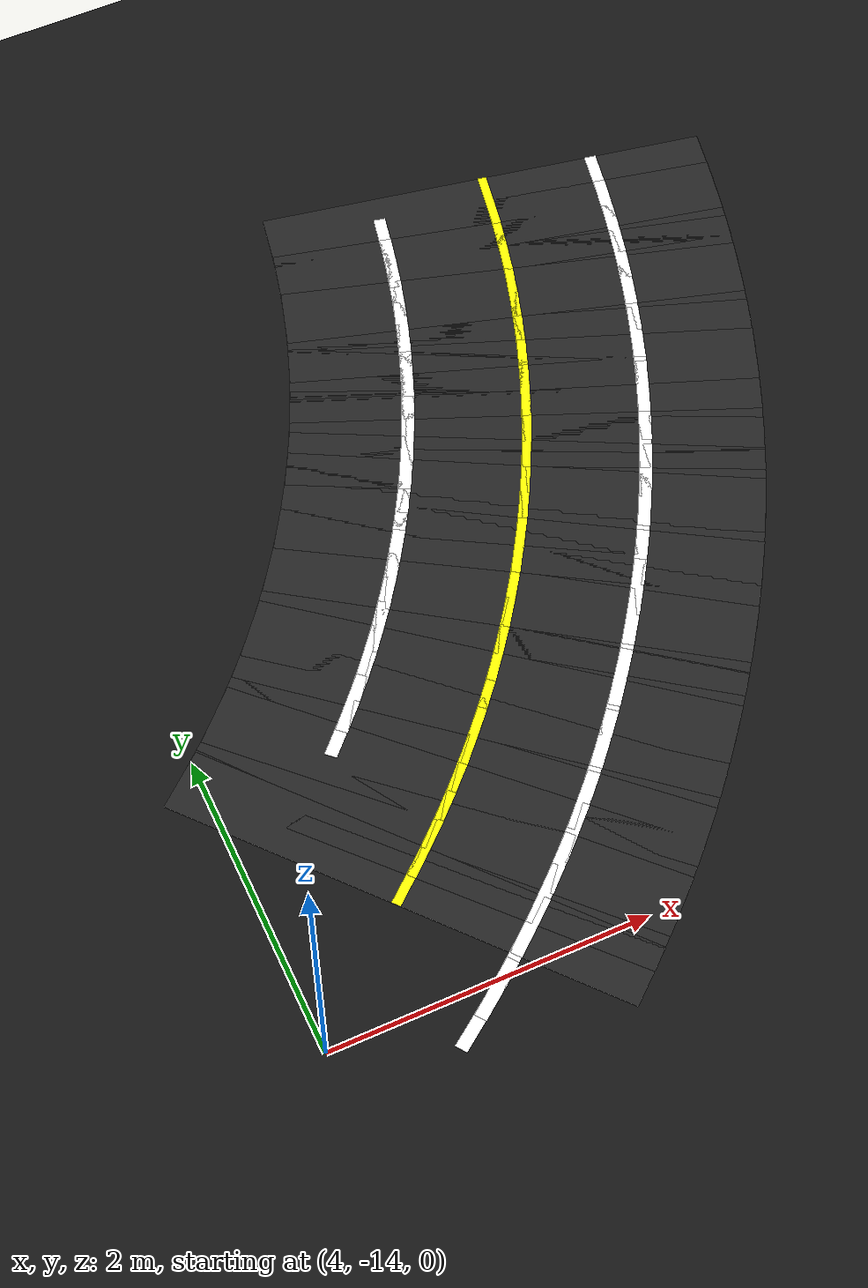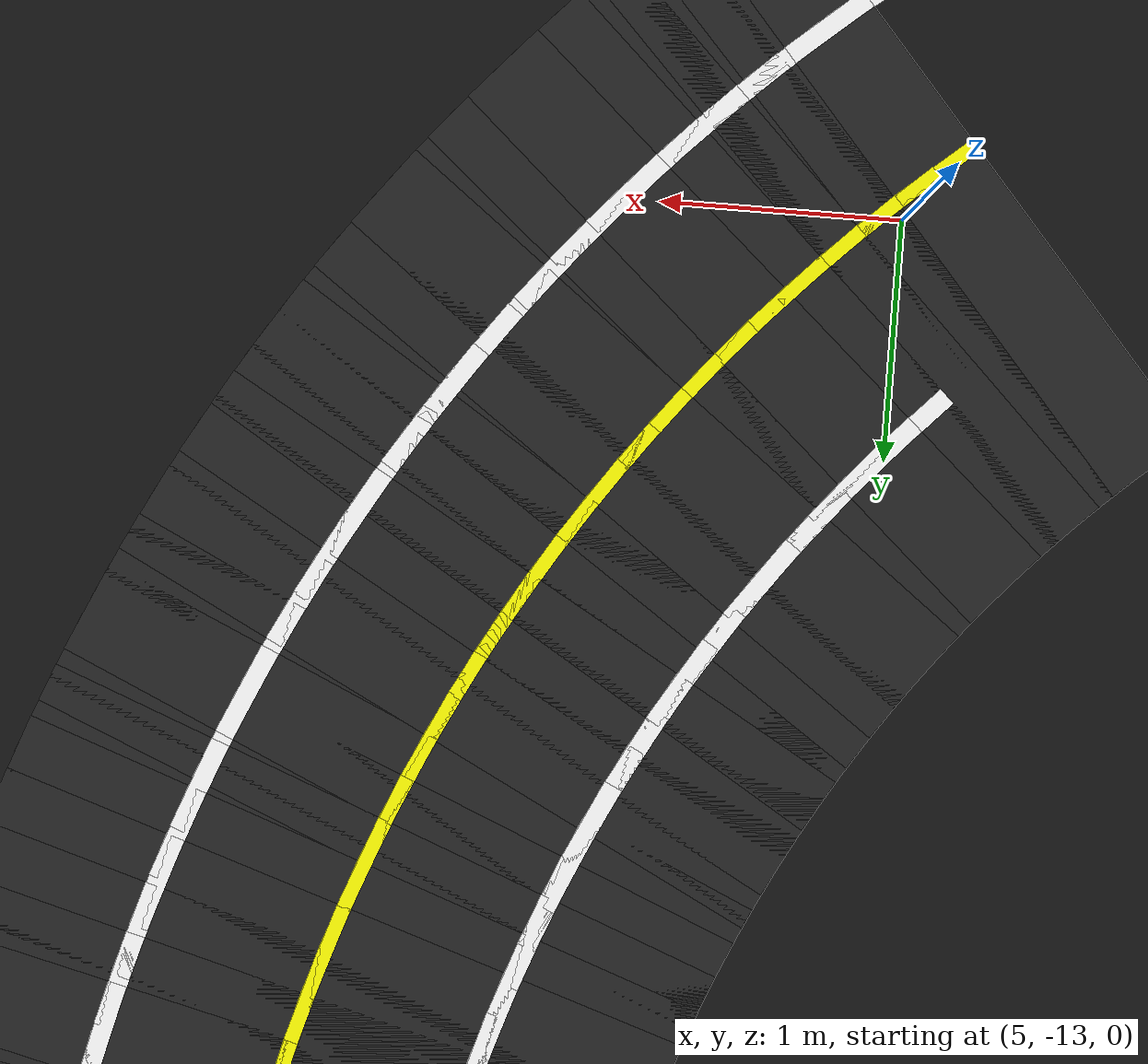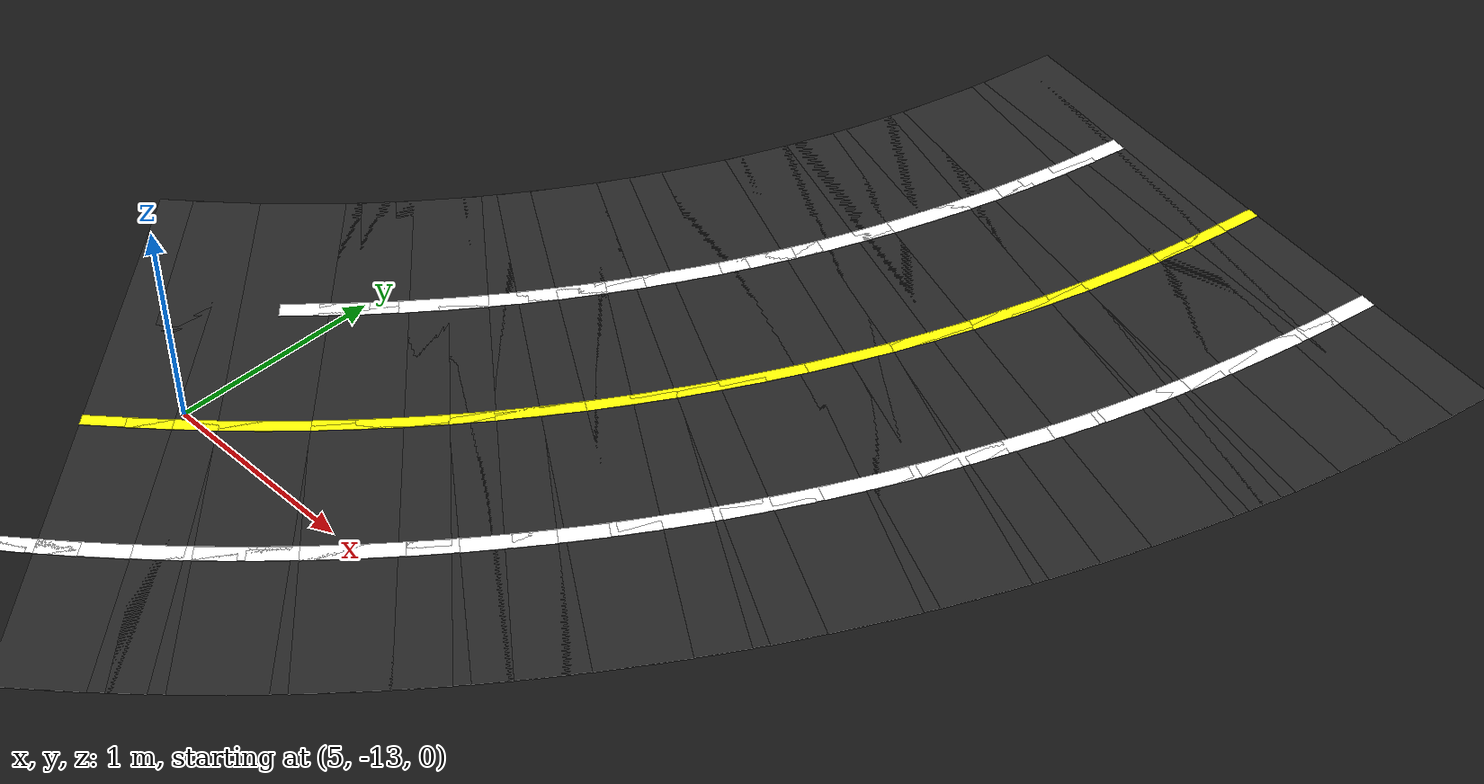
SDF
<sdf version="1.6">
 <world name="figure8_world">
  <model name="ground_plane">
   <static>true</static>
   <link name="link">
    <collision name="collision">
     <geometry><plane><normal>0 0 1</normal><size>120 120</size></plane></geometry>
    </collision>
    <visual name="visual">
     <geometry><plane><normal>0 0 1</normal><size>120 120</size></plane></geometry>
     <material><ambient>0.08 0.08 0.08 1</ambient><diffuse>0.08 0.08 0.08 1</diffuse></material>
    </visual>
   </link>
  </model>
  <model name="seg_00784">
   <static>true</static>
   <pose>7.3744 -8.8668 0.0010 0 0 -1.7541</pose>
   <link name="link">
    <collision name="collision"><geometry><box><size>0.4000 3.0000 0.002</size></box></geometry></collision>
    <visual name="visual">
     <geometry><box><size>0.4000 3.0000 0.002</size></box></geometry>
     <material><ambient>0.14 0.14 0.14 1</ambient><diffuse>0.14 0.14 0.14 1</diffuse></material>
    </visual>
   </link>
  </model>
  <model name="seg_00785">
   <static>true</static>
   <pose>8.1119 -9.0034 0.0030 0 0 -1.7541</pose>
   <link name="link">
    <collision name="collision"><geometry><box><size>0.4000 0.0800 0.002</size></box></geometry></collision>
    <visual name="visual">
     <geometry><box><size>0.4000 0.0800 0.002</size></box></geometry>
     <material><ambient>1 1 1 1</ambient><diffuse>1 1 1 1</diffuse></material>
    </visual>
   </link>
  </model>
  <model name="seg_00787">
   <static>true</static>
   <pose>7.3744 -8.8668 0.0030 0 0 -1.7541</pose>
   <link name="link">
    <collision name="collision"><geometry><box><size>0.4000 0.0600 0.002</size></box></geometry></collision>
    <visual name="visual">
     <geometry><box><size>0.4000 0.0600 0.002</size></box></geometry>
     <material><ambient>1 1 0 1</ambient><diffuse>1 1 0 1</diffuse></material>
    </visual>
   </link>
  </model>
  <model name="seg_00788">
   <static>true</static>
   <pose>7.3361 -9.0593 0.0010 0 0 -1.7802</pose>
   <link name="link">
    <collision name="collision"><geometry><box><size>0.4000 3.0000 0.002</size></box></geometry></collision>
    <visual name="visual">
     <geometry><box><size>0.4000 3.0000 0.002</size></box></geometry>
     <material><ambient>0.14 0.14 0.14 1</ambient><diffuse>0.14 0.14 0.14 1</diffuse></material>
    </visual>
   </link>
  </model>
  <model name="seg_00789">
   <static>true</static>
   <pose>8.0697 -9.2153 0.0030 0 0 -1.7802</pose>
   <link name="link">
    <collision name="collision"><geometry><box><size>0.4000 0.0800 0.002</size></box></geometry></collision>
    <visual name="visual">
     <geometry><box><size>0.4000 0.0800 0.002</size></box></geometry>
     <material><ambient>1 1 1 1</ambient><diffuse>1 1 1 1</diffuse></material>
    </visual>
   </link>
  </model>
  <model name="seg_00790">
   <static>true</static>
   <pose>6.6025 -8.9034 0.0030 0 0 -1.7802</pose>
   <link name="link">
    <collision name="collision"><geometry><box><size>0.4000 0.0800 0.002</size></box></geometry></collision>
    <visual name="visual">
     <geometry><box><size>0.4000 0.0800 0.002</size></box></geometry>
     <material><ambient>1 1 1 1</ambient><diffuse>1 1 1 1</diffuse></material>
    </visual>
   </link>
  </model>
  <model name="seg_00791">
   <static>true</static>
   <pose>7.3361 -9.0593 0.0030 0 0 -1.7802</pose>
   <link name="link">
    <collision name="collision"><geometry><box><size>0.4000 0.0600 0.002</size></box></geometry></collision>
    <visual name="visual">
     <geometry><box><size>0.4000 0.0600 0.002</size></box></geometry>
     <material><ambient>1 1 0 1</ambient><diffuse>1 1 0 1</diffuse></material>
    </visual>
   </link>
  </model>
  <model name="seg_00792">
   <static>true</static>
   <pose>7.2928 -9.2508 0.0010 0 0 -1.8064</pose>
   <link name="link">
    <collision name="collision"><geometry><box><size>0.4000 3.0000 0.002</size></box></geometry></collision>
    <visual name="visual">
     <geometry><box><size>0.4000 3.0000 0.002</size></box></geometry>
     <material><ambient>0.14 0.14 0.14 1</ambient><diffuse>0.14 0.14 0.14 1</diffuse></material>
    </visual>
   </link>
  </model>
  <model name="seg_00793">
   <static>true</static>
   <pose>8.0221 -9.4259 0.0030 0 0 -1.8064</pose>
   <link name="link">
    <collision name="collision"><geometry><box><size>0.4000 0.0800 0.002</size></box></geometry></collision>
    <visual name="visual">
     <geometry><box><size>0.4000 0.0800 0.002</size></box></geometry>
     <material><ambient>1 1 1 1</ambient><diffuse>1 1 1 1</diffuse></material>
    </visual>
   </link>
  </model>
  <model name="seg_00794">
   <static>true</static>
   <pose>6.5635 -9.0758 0.0030 0 0 -1.8064</pose>
   <link name="link">
    <collision name="collision"><geometry><box><size>0.4000 0.0800 0.002</size></box></geometry></collision>
    <visual name="visual">
     <geometry><box><size>0.4000 0.0800 0.002</size></box></geometry>
     <material><ambient>1 1 1 1</ambient><diffuse>1 1 1 1</diffuse></material>
    </visual>
   </link>
  </model>
  <model name="seg_00795">
   <static>true</static>
   <pose>7.2928 -9.2508 0.0030 0 0 -1.8064</pose>
   <link name="link">
    <collision name="collision"><geometry><box><size>0.4000 0.0600 0.002</size></box></geometry></collision>
    <visual name="visual">
     <geometry><box><size>0.4000 0.0600 0.002</size></box></geometry>
     <material><ambient>1 1 0 1</ambient><diffuse>1 1 0 1</diffuse></material>
    </visual>
   </link>
  </model>
  <model name="seg_00796">
   <static>true</static>
   <pose>7.2444 -9.4411 0.0010 0 0 -1.8326</pose>
   <link name="link">
    <collision name="collision"><geometry><box><size>0.4000 3.0000 0.002</size></box></geometry></collision>
    <visual name="visual">
     <geometry><box><size>0.4000 3.0000 0.002</size></box></geometry>
     <material><ambient>0.14 0.14 0.14 1</ambient><diffuse>0.14 0.14 0.14 1</diffuse></material>
    </visual>
   </link>
  </model>
  <model name="seg_00797">
   <static>true</static>
   <pose>7.9689 -9.6353 0.0030 0 0 -1.8326</pose>
   <link name="link">
    <collision name="collision"><geometry><box><size>0.4000 0.0800 0.002</size></box></geometry></collision>
    <visual name="visual">
     <geometry><box><size>0.4000 0.0800 0.002</size></box></geometry>
     <material><ambient>1 1 1 1</ambient><diffuse>1 1 1 1</diffuse></material>
    </visual>
   </link>
  </model>
  <model name="seg_00798">
   <static>true</static>
   <pose>6.5200 -9.2470 0.0030 0 0 -1.8326</pose>
   <link name="link">
    <collision name="collision"><geometry><box><size>0.4000 0.0800 0.002</size></box></geometry></collision>
    <visual name="visual">
     <geometry><box><size>0.4000 0.0800 0.002</size></box></geometry>
     <material><ambient>1 1 1 1</ambient><diffuse>1 1 1 1</diffuse></material>
    </visual>
   </link>
  </model>
  <model name="seg_00799">
   <static>true</static>
   <pose>7.2444 -9.4411 0.0030 0 0 -1.8326</pose>
   <link name="link">
    <collision name="collision"><geometry><box><size>0.4000 0.0600 0.002</size></box></geometry></collision>
    <visual name="visual">
     <geometry><box><size>0.4000 0.0600 0.002</size></box></geometry>
     <material><ambient>1 1 0 1</ambient><diffuse>1 1 0 1</diffuse></material>
    </visual>
   </link>
  </model>
  <model name="seg_00800">
   <static>true</static>
   <pose>7.1911 -9.6301 0.0010 0 0 -1.8588</pose>
   <link name="link">
    <collision name="collision"><geometry><box><size>0.4000 3.0000 0.002</size></box></geometry></collision>
    <visual name="visual">
     <geometry><box><size>0.4000 3.0000 0.002</size></box></geometry>
     <material><ambient>0.14 0.14 0.14 1</ambient><diffuse>0.14 0.14 0.14 1</diffuse></material>
    </visual>
   </link>
  </model>
  <model name="seg_00801">
   <static>true</static>
   <pose>7.9103 -9.8431 0.0030 0 0 -1.8588</pose>
   <link name="link">
    <collision name="collision"><geometry><box><size>0.4000 0.0800 0.002</size></box></geometry></collision>
    <visual name="visual">
     <geometry><box><size>0.4000 0.0800 0.002</size></box></geometry>
     <material><ambient>1 1 1 1</ambient><diffuse>1 1 1 1</diffuse></material>
    </visual>
   </link>
  </model>
  <model name="seg_00802">
   <static>true</static>
   <pose>6.4720 -9.4171 0.0030 0 0 -1.8588</pose>
   <link name="link">
    <collision name="collision"><geometry><box><size>0.4000 0.0800 0.002</size></box></geometry></collision>
    <visual name="visual">
     <geometry><box><size>0.4000 0.0800 0.002</size></box></geometry>
     <material><ambient>1 1 1 1</ambient><diffuse>1 1 1 1</diffuse></material>
    </visual>
   </link>
  </model>
  <model name="seg_00803">
   <static>true</static>
   <pose>7.1911 -9.6301 0.0030 0 0 -1.8588</pose>
   <link name="link">
    <collision name="collision"><geometry><box><size>0.4000 0.0600 0.002</size></box></geometry></collision>
    <visual name="visual">
     <geometry><box><size>0.4000 0.0600 0.002</size></box></geometry>
     <material><ambient>1 1 0 1</ambient><diffuse>1 1 0 1</diffuse></material>
    </visual>
   </link>
  </model>
  <model name="seg_00804">
   <static>true</static>
   <pose>7.1329 -9.8176 0.0010 0 0 -1.8850</pose>
   <link name="link">
    <collision name="collision"><geometry><box><size>0.4000 3.0000 0.002</size></box></geometry></collision>
    <visual name="visual">
     <geometry><box><size>0.4000 3.0000 0.002</size></box></geometry>
     <material><ambient>0.14 0.14 0.14 1</ambient><diffuse>0.14 0.14 0.14 1</diffuse></material>
    </visual>
   </link>
  </model>
  <model name="seg_00805">
   <static>true</static>
   <pose>7.8462 -10.0494 0.0030 0 0 -1.8850</pose>
   <link name="link">
    <collision name="collision"><geometry><box><size>0.4000 0.0800 0.002</size></box></geometry></collision>
    <visual name="visual">
     <geometry><box><size>0.4000 0.0800 0.002</size></box></geometry>
     <material><ambient>1 1 1 1</ambient><diffuse>1 1 1 1</diffuse></material>
    </visual>
   </link>
  </model>
  <model name="seg_00806">
   <static>true</static>
   <pose>6.4196 -9.5859 0.0030 0 0 -1.8850</pose>
   <link name="link">
    <collision name="collision"><geometry><box><size>0.4000 0.0800 0.002</size></box></geometry></collision>
    <visual name="visual">
     <geometry><box><size>0.4000 0.0800 0.002</size></box></geometry>
     <material><ambient>1 1 1 1</ambient><diffuse>1 1 1 1</diffuse></material>
    </visual>
   </link>
  </model>
  <model name="seg_00807">
   <static>true</static>
   <pose>7.1329 -9.8176 0.0030 0 0 -1.8850</pose>
   <link name="link">
    <collision name="collision"><geometry><box><size>0.4000 0.0600 0.002</size></box></geometry></collision>
    <visual name="visual">
     <geometry><box><size>0.4000 0.0600 0.002</size></box></geometry>
     <material><ambient>1 1 0 1</ambient><diffuse>1 1 0 1</diffuse></material>
    </visual>
   </link>
  </model>
  <model name="seg_00808">
   <static>true</static>
   <pose>7.0698 -10.0036 0.0010 0 0 -1.9111</pose>
   <link name="link">
    <collision name="collision"><geometry><box><size>0.4000 3.0000 0.002</size></box></geometry></collision>
    <visual name="visual">
     <geometry><box><size>0.4000 3.0000 0.002</size></box></geometry>
     <material><ambient>0.14 0.14 0.14 1</ambient><diffuse>0.14 0.14 0.14 1</diffuse></material>
    </visual>
   </link>
  </model>
  <model name="seg_00809">
   <static>true</static>
   <pose>7.7768 -10.2539 0.0030 0 0 -1.9111</pose>
   <link name="link">
    <collision name="collision"><geometry><box><size>0.4000 0.0800 0.002</size></box></geometry></collision>
    <visual name="visual">
     <geometry><box><size>0.4000 0.0800 0.002</size></box></geometry>
     <material><ambient>1 1 1 1</ambient><diffuse>1 1 1 1</diffuse></material>
    </visual>
   </link>
  </model>
  <model name="seg_00810">
   <static>true</static>
   <pose>6.3628 -9.7532 0.0030 0 0 -1.9111</pose>
   <link name="link">
    <collision name="collision"><geometry><box><size>0.4000 0.0800 0.002</size></box></geometry></collision>
    <visual name="visual">
     <geometry><box><size>0.4000 0.0800 0.002</size></box></geometry>
     <material><ambient>1 1 1 1</ambient><diffuse>1 1 1 1</diffuse></material>
    </visual>
   </link>
  </model>
  <model name="seg_00811">
   <static>true</static>
   <pose>7.0698 -10.0036 0.0030 0 0 -1.9111</pose>
   <link name="link">
    <collision name="collision"><geometry><box><size>0.4000 0.0600 0.002</size></box></geometry></collision>
    <visual name="visual">
     <geometry><box><size>0.4000 0.0600 0.002</size></box></geometry>
     <material><ambient>1 1 0 1</ambient><diffuse>1 1 0 1</diffuse></material>
    </visual>
   </link>
  </model>
  <model name="seg_00812">
   <static>true</static>
   <pose>7.0019 -10.1878 0.0010 0 0 -1.9373</pose>
   <link name="link">
    <collision name="collision"><geometry><box><size>0.4000 3.0000 0.002</size></box></geometry></collision>
    <visual name="visual">
     <geometry><box><size>0.4000 3.0000 0.002</size></box></geometry>
     <material><ambient>0.14 0.14 0.14 1</ambient><diffuse>0.14 0.14 0.14 1</diffuse></material>
    </visual>
   </link>
  </model>
  <model name="seg_00813">
   <static>true</static>
   <pose>7.7020 -10.4565 0.0030 0 0 -1.9373</pose>
   <link name="link">
    <collision name="collision"><geometry><box><size>0.4000 0.0800 0.002</size></box></geometry></collision>
    <visual name="visual">
     <geometry><box><size>0.4000 0.0800 0.002</size></box></geometry>
     <material><ambient>1 1 1 1</ambient><diffuse>1 1 1 1</diffuse></material>
    </visual>
   </link>
  </model>
  <model name="seg_00814">
   <static>true</static>
   <pose>6.3017 -9.9190 0.0030 0 0 -1.9373</pose>
   <link name="link">
    <collision name="collision"><geometry><box><size>0.4000 0.0800 0.002</size></box></geometry></collision>
    <visual name="visual">
     <geometry><box><size>0.4000 0.0800 0.002</size></box></geometry>
     <material><ambient>1 1 1 1</ambient><diffuse>1 1 1 1</diffuse></material>
    </visual>
   </link>
  </model>
  <model name="seg_00815">
   <static>true</static>
   <pose>7.0019 -10.1878 0.0030 0 0 -1.9373</pose>
   <link name="link">
    <collision name="collision"><geometry><box><size>0.4000 0.0600 0.002</size></box></geometry></collision>
    <visual name="visual">
     <geometry><box><size>0.4000 0.0600 0.002</size></box></geometry>
     <material><ambient>1 1 0 1</ambient><diffuse>1 1 0 1</diffuse></material>
    </visual>
   </link>
  </model>
  <model name="seg_00816">
   <static>true</static>
   <pose>6.9291 -10.3701 0.0010 0 0 -1.9635</pose>
   <link name="link">
    <collision name="collision"><geometry><box><size>0.4000 3.0000 0.002</size></box></geometry></collision>
    <visual name="visual">
     <geometry><box><size>0.4000 3.0000 0.002</size></box></geometry>
     <material><ambient>0.14 0.14 0.14 1</ambient><diffuse>0.14 0.14 0.14 1</diffuse></material>
    </visual>
   </link>
  </model>
  <model name="seg_00817">
   <static>true</static>
   <pose>7.6220 -10.6571 0.0030 0 0 -1.9635</pose>
   <link name="link">
    <collision name="collision"><geometry><box><size>0.4000 0.0800 0.002</size></box></geometry></collision>
    <visual name="visual">
     <geometry><box><size>0.4000 0.0800 0.002</size></box></geometry>
     <material><ambient>1 1 1 1</ambient><diffuse>1 1 1 1</diffuse></material>
    </visual>
   </link>
  </model>
  <model name="seg_00818">
   <static>true</static>
   <pose>6.2362 -10.0831 0.0030 0 0 -1.9635</pose>
   <link name="link">
    <collision name="collision"><geometry><box><size>0.4000 0.0800 0.002</size></box></geometry></collision>
    <visual name="visual">
     <geometry><box><size>0.4000 0.0800 0.002</size></box></geometry>
     <material><ambient>1 1 1 1</ambient><diffuse>1 1 1 1</diffuse></material>
    </visual>
   </link>
  </model>
  <model name="seg_00819">
   <static>true</static>
   <pose>6.9291 -10.3701 0.0030 0 0 -1.9635</pose>
   <link name="link">
    <collision name="collision"><geometry><box><size>0.4000 0.0600 0.002</size></box></geometry></collision>
    <visual name="visual">
     <geometry><box><size>0.4000 0.0600 0.002</size></box></geometry>
     <material><ambient>1 1 0 1</ambient><diffuse>1 1 0 1</diffuse></material>
    </visual>
   </link>
  </model>
  <model name="seg_00820">
   <static>true</static>
   <pose>6.8516 -10.5505 0.0010 0 0 -1.9897</pose>
   <link name="link">
    <collision name="collision"><geometry><box><size>0.4000 3.0000 0.002</size></box></geometry></collision>
    <visual name="visual">
     <geometry><box><size>0.4000 3.0000 0.002</size></box></geometry>
     <material><ambient>0.14 0.14 0.14 1</ambient><diffuse>0.14 0.14 0.14 1</diffuse></material>
    </visual>
   </link>
  </model>
  <model name="seg_00821">
   <static>true</static>
   <pose>7.5368 -10.8556 0.0030 0 0 -1.9897</pose>
   <link name="link">
    <collision name="collision"><geometry><box><size>0.4000 0.0800 0.002</size></box></geometry></collision>
    <visual name="visual">
     <geometry><box><size>0.4000 0.0800 0.002</size></box></geometry>
     <material><ambient>1 1 1 1</ambient><diffuse>1 1 1 1</diffuse></material>
    </visual>
   </link>
  </model>
  <model name="seg_00822">
   <static>true</static>
   <pose>6.1664 -10.2455 0.0030 0 0 -1.9897</pose>
   <link name="link">
    <collision name="collision"><geometry><box><size>0.4000 0.0800 0.002</size></box></geometry></collision>
    <visual name="visual">
     <geometry><box><size>0.4000 0.0800 0.002</size></box></geometry>
     <material><ambient>1 1 1 1</ambient><diffuse>1 1 1 1</diffuse></material>
    </visual>
   </link>
  </model>
  <model name="seg_00823">
   <static>true</static>
   <pose>6.8516 -10.5505 0.0030 0 0 -1.9897</pose>
   <link name="link">
    <collision name="collision"><geometry><box><size>0.4000 0.0600 0.002</size></box></geometry></collision>
    <visual name="visual">
     <geometry><box><size>0.4000 0.0600 0.002</size></box></geometry>
     <material><ambient>1 1 0 1</ambient><diffuse>1 1 0 1</diffuse></material>
    </visual>
   </link>
  </model>
  <model name="seg_00824">
   <static>true</static>
   <pose>6.7694 -10.7288 0.0010 0 0 -2.0159</pose>
   <link name="link">
    <collision name="collision"><geometry><box><size>0.4000 3.0000 0.002</size></box></geometry></collision>
    <visual name="visual">
     <geometry><box><size>0.4000 3.0000 0.002</size></box></geometry>
     <material><ambient>0.14 0.14 0.14 1</ambient><diffuse>0.14 0.14 0.14 1</diffuse></material>
    </visual>
   </link>
  </model>
  <model name="seg_00825">
   <static>true</static>
   <pose>7.4463 -11.0517 0.0030 0 0 -2.0159</pose>
   <link name="link">
    <collision name="collision"><geometry><box><size>0.4000 0.0800 0.002</size></box></geometry></collision>
    <visual name="visual">
     <geometry><box><size>0.4000 0.0800 0.002</size></box></geometry>
     <material><ambient>1 1 1 1</ambient><diffuse>1 1 1 1</diffuse></material>
    </visual>
   </link>
  </model>
  <model name="seg_00826">
   <static>true</static>
   <pose>6.0925 -10.4059 0.0030 0 0 -2.0159</pose>
   <link name="link">
    <collision name="collision"><geometry><box><size>0.4000 0.0800 0.002</size></box></geometry></collision>
    <visual name="visual">
     <geometry><box><size>0.4000 0.0800 0.002</size></box></geometry>
     <material><ambient>1 1 1 1</ambient><diffuse>1 1 1 1</diffuse></material>
    </visual>
   </link>
  </model>
  <model name="seg_00827">
   <static>true</static>
   <pose>6.7694 -10.7288 0.0030 0 0 -2.0159</pose>
   <link name="link">
    <collision name="collision"><geometry><box><size>0.4000 0.0600 0.002</size></box></geometry></collision>
    <visual name="visual">
     <geometry><box><size>0.4000 0.0600 0.002</size></box></geometry>
     <material><ambient>1 1 0 1</ambient><diffuse>1 1 0 1</diffuse></material>
    </visual>
   </link>
  </model>
  <model name="seg_00828">
   <static>true</static>
   <pose>6.6825 -10.9049 0.0010 0 0 -2.0420</pose>
   <link name="link">
    <collision name="collision"><geometry><box><size>0.4000 3.0000 0.002</size></box></geometry></collision>
    <visual name="visual">
     <geometry><box><size>0.4000 3.0000 0.002</size></box></geometry>
     <material><ambient>0.14 0.14 0.14 1</ambient><diffuse>0.14 0.14 0.14 1</diffuse></material>
    </visual>
   </link>
  </model>
  <model name="seg_00829">
   <static>true</static>
   <pose>7.3508 -11.2454 0.0030 0 0 -2.0420</pose>
   <link name="link">
    <collision name="collision"><geometry><box><size>0.4000 0.0800 0.002</size></box></geometry></collision>
    <visual name="visual">
     <geometry><box><size>0.4000 0.0800 0.002</size></box></geometry>
     <material><ambient>1 1 1 1</ambient><diffuse>1 1 1 1</diffuse></material>
    </visual>
   </link>
  </model>
  <model name="seg_00830">
   <static>true</static>
   <pose>6.0143 -10.5644 0.0030 0 0 -2.0420</pose>
   <link name="link">
    <collision name="collision"><geometry><box><size>0.4000 0.0800 0.002</size></box></geometry></collision>
    <visual name="visual">
     <geometry><box><size>0.4000 0.0800 0.002</size></box></geometry>
     <material><ambient>1 1 1 1</ambient><diffuse>1 1 1 1</diffuse></material>
    </visual>
   </link>
  </model>
  <model name="seg_00831">
   <static>true</static>
   <pose>6.6825 -10.9049 0.0030 0 0 -2.0420</pose>
   <link name="link">
    <collision name="collision"><geometry><box><size>0.4000 0.0600 0.002</size></box></geometry></collision>
    <visual name="visual">
     <geometry><box><size>0.4000 0.0600 0.002</size></box></geometry>
     <material><ambient>1 1 0 1</ambient><diffuse>1 1 0 1</diffuse></material>
    </visual>
   </link>
  </model>
  <model name="seg_00832">
   <static>true</static>
   <pose>6.5911 -11.0787 0.0010 0 0 -2.0682</pose>
   <link name="link">
    <collision name="collision"><geometry><box><size>0.4000 3.0000 0.002</size></box></geometry></collision>
    <visual name="visual">
     <geometry><box><size>0.4000 3.0000 0.002</size></box></geometry>
     <material><ambient>0.14 0.14 0.14 1</ambient><diffuse>0.14 0.14 0.14 1</diffuse></material>
    </visual>
   </link>
  </model>
  <model name="seg_00833">
   <static>true</static>
   <pose>7.2502 -11.4366 0.0030 0 0 -2.0682</pose>
   <link name="link">
    <collision name="collision"><geometry><box><size>0.4000 0.0800 0.002</size></box></geometry></collision>
    <visual name="visual">
     <geometry><box><size>0.4000 0.0800 0.002</size></box></geometry>
     <material><ambient>1 1 1 1</ambient><diffuse>1 1 1 1</diffuse></material>
    </visual>
   </link>
  </model>
  <model name="seg_00834">
   <static>true</static>
   <pose>5.9320 -10.7208 0.0030 0 0 -2.0682</pose>
   <link name="link">
    <collision name="collision"><geometry><box><size>0.4000 0.0800 0.002</size></box></geometry></collision>
    <visual name="visual">
     <geometry><box><size>0.4000 0.0800 0.002</size></box></geometry>
     <material><ambient>1 1 1 1</ambient><diffuse>1 1 1 1</diffuse></material>
    </visual>
   </link>
  </model>
  <model name="seg_00835">
   <static>true</static>
   <pose>6.5911 -11.0787 0.0030 0 0 -2.0682</pose>
   <link name="link">
    <collision name="collision"><geometry><box><size>0.4000 0.0600 0.002</size></box></geometry></collision>
    <visual name="visual">
     <geometry><box><size>0.4000 0.0600 0.002</size></box></geometry>
     <material><ambient>1 1 0 1</ambient><diffuse>1 1 0 1</diffuse></material>
    </visual>
   </link>
  </model>
  <model name="seg_00836">
   <static>true</static>
   <pose>6.4952 -11.2500 0.0010 0 0 -2.0944</pose>
   <link name="link">
    <collision name="collision"><geometry><box><size>0.4000 3.0000 0.002</size></box></geometry></collision>
    <visual name="visual">
     <geometry><box><size>0.4000 3.0000 0.002</size></box></geometry>
     <material><ambient>0.14 0.14 0.14 1</ambient><diffuse>0.14 0.14 0.14 1</diffuse></material>
    </visual>
   </link>
  </model>
  <model name="seg_00837">
   <static>true</static>
   <pose>7.1447 -11.6250 0.0030 0 0 -2.0944</pose>
   <link name="link">
    <collision name="collision"><geometry><box><size>0.4000 0.0800 0.002</size></box></geometry></collision>
    <visual name="visual">
     <geometry><box><size>0.4000 0.0800 0.002</size></box></geometry>
     <material><ambient>1 1 1 1</ambient><diffuse>1 1 1 1</diffuse></material>
    </visual>
   </link>
  </model>
  <model name="seg_00838">
   <static>true</static>
   <pose>5.8457 -10.8750 0.0030 0 0 -2.0944</pose>
   <link name="link">
    <collision name="collision"><geometry><box><size>0.4000 0.0800 0.002</size></box></geometry></collision>
    <visual name="visual">
     <geometry><box><size>0.4000 0.0800 0.002</size></box></geometry>
     <material><ambient>1 1 1 1</ambient><diffuse>1 1 1 1</diffuse></material>
    </visual>
   </link>
  </model>
  <model name="seg_00839">
   <static>true</static>
   <pose>6.4952 -11.2500 0.0030 0 0 -2.0944</pose>
   <link name="link">
    <collision name="collision"><geometry><box><size>0.4000 0.0600 0.002</size></box></geometry></collision>
    <visual name="visual">
     <geometry><box><size>0.4000 0.0600 0.002</size></box></geometry>
     <material><ambient>1 1 0 1</ambient><diffuse>1 1 0 1</diffuse></material>
    </visual>
   </link>
  </model>
  <model name="seg_00840">
   <static>true</static>
   <pose>6.3948 -11.4187 0.0010 0 0 -2.1206</pose>
   <link name="link">
    <collision name="collision"><geometry><box><size>0.4000 3.0000 0.002</size></box></geometry></collision>
    <visual name="visual">
     <geometry><box><size>0.4000 3.0000 0.002</size></box></geometry>
     <material><ambient>0.14 0.14 0.14 1</ambient><diffuse>0.14 0.14 0.14 1</diffuse></material>
    </visual>
   </link>
  </model>
  <model name="seg_00841">
   <static>true</static>
   <pose>7.0343 -11.8106 0.0030 0 0 -2.1206</pose>
   <link name="link">
    <collision name="collision"><geometry><box><size>0.4000 0.0800 0.002</size></box></geometry></collision>
    <visual name="visual">
     <geometry><box><size>0.4000 0.0800 0.002</size></box></geometry>
     <material><ambient>1 1 1 1</ambient><diffuse>1 1 1 1</diffuse></material>
    </visual>
   </link>
  </model>
  <model name="seg_00842">
   <static>true</static>
   <pose>5.7553 -11.0269 0.0030 0 0 -2.1206</pose>
   <link name="link">
    <collision name="collision"><geometry><box><size>0.4000 0.0800 0.002</size></box></geometry></collision>
    <visual name="visual">
     <geometry><box><size>0.4000 0.0800 0.002</size></box></geometry>
     <material><ambient>1 1 1 1</ambient><diffuse>1 1 1 1</diffuse></material>
    </visual>
   </link>
  </model>
  <model name="seg_00843">
   <static>true</static>
   <pose>6.3948 -11.4187 0.0030 0 0 -2.1206</pose>
   <link name="link">
    <collision name="collision"><geometry><box><size>0.4000 0.0600 0.002</size></box></geometry></collision>
    <visual name="visual">
     <geometry><box><size>0.4000 0.0600 0.002</size></box></geometry>
     <material><ambient>1 1 0 1</ambient><diffuse>1 1 0 1</diffuse></material>
    </visual>
   </link>
  </model>
  <model name="seg_00844">
   <static>true</static>
   <pose>6.2900 -11.5848 0.0010 0 0 -2.1468</pose>
   <link name="link">
    <collision name="collision"><geometry><box><size>0.4000 3.0000 0.002</size></box></geometry></collision>
    <visual name="visual">
     <geometry><box><size>0.4000 3.0000 0.002</size></box></geometry>
     <material><ambient>0.14 0.14 0.14 1</ambient><diffuse>0.14 0.14 0.14 1</diffuse></material>
    </visual>
   </link>
  </model>
  <model name="seg_00845">
   <static>true</static>
   <pose>6.9190 -11.9933 0.0030 0 0 -2.1468</pose>
   <link name="link">
    <collision name="collision"><geometry><box><size>0.4000 0.0800 0.002</size></box></geometry></collision>
    <visual name="visual">
     <geometry><box><size>0.4000 0.0800 0.002</size></box></geometry>
     <material><ambient>1 1 1 1</ambient><diffuse>1 1 1 1</diffuse></material>
    </visual>
   </link>
  </model>
  <model name="seg_00846">
   <static>true</static>
   <pose>5.6610 -11.1763 0.0030 0 0 -2.1468</pose>
   <link name="link">
    <collision name="collision"><geometry><box><size>0.4000 0.0800 0.002</size></box></geometry></collision>
    <visual name="visual">
     <geometry><box><size>0.4000 0.0800 0.002</size></box></geometry>
     <material><ambient>1 1 1 1</ambient><diffuse>1 1 1 1</diffuse></material>
    </visual>
   </link>
  </model>
  <model name="seg_00847">
   <static>true</static>
   <pose>6.2900 -11.5848 0.0030 0 0 -2.1468</pose>
   <link name="link">
    <collision name="collision"><geometry><box><size>0.4000 0.0600 0.002</size></box></geometry></collision>
    <visual name="visual">
     <geometry><box><size>0.4000 0.0600 0.002</size></box></geometry>
     <material><ambient>1 1 0 1</ambient><diffuse>1 1 0 1</diffuse></material>
    </visual>
   </link>
  </model>
  <model name="seg_00848">
   <static>true</static>
   <pose>6.1809 -11.7480 0.0010 0 0 -2.1729</pose>
   <link name="link">
    <collision name="collision"><geometry><box><size>0.4000 3.0000 0.002</size></box></geometry></collision>
    <visual name="visual">
     <geometry><box><size>0.4000 3.0000 0.002</size></box></geometry>
     <material><ambient>0.14 0.14 0.14 1</ambient><diffuse>0.14 0.14 0.14 1</diffuse></material>
    </visual>
   </link>
  </model>
  <model name="seg_00849">
   <static>true</static>
   <pose>6.7990 -12.1729 0.0030 0 0 -2.1729</pose>
   <link name="link">
    <collision name="collision"><geometry><box><size>0.4000 0.0800 0.002</size></box></geometry></collision>
    <visual name="visual">
     <geometry><box><size>0.4000 0.0800 0.002</size></box></geometry>
     <material><ambient>1 1 1 1</ambient><diffuse>1 1 1 1</diffuse></material>
    </visual>
   </link>
  </model>
  <model name="seg_00850">
   <static>true</static>
   <pose>5.5629 -11.3232 0.0030 0 0 -2.1729</pose>
   <link name="link">
    <collision name="collision"><geometry><box><size>0.4000 0.0800 0.002</size></box></geometry></collision>
    <visual name="visual">
     <geometry><box><size>0.4000 0.0800 0.002</size></box></geometry>
     <material><ambient>1 1 1 1</ambient><diffuse>1 1 1 1</diffuse></material>
    </visual>
   </link>
  </model>
  <model name="seg_00851">
   <static>true</static>
   <pose>6.1809 -11.7480 0.0030 0 0 -2.1729</pose>
   <link name="link">
    <collision name="collision"><geometry><box><size>0.4000 0.0600 0.002</size></box></geometry></collision>
    <visual name="visual">
     <geometry><box><size>0.4000 0.0600 0.002</size></box></geometry>
     <material><ambient>1 1 0 1</ambient><diffuse>1 1 0 1</diffuse></material>
    </visual>
   </link>
  </model>
  <model name="seg_00852">
   <static>true</static>
   <pose>6.0676 -11.9084 0.0010 0 0 -2.1991</pose>
   <link name="link">
    <collision name="collision"><geometry><box><size>0.4000 3.0000 0.002</size></box></geometry></collision>
    <visual name="visual">
     <geometry><box><size>0.4000 3.0000 0.002</size></box></geometry>
     <material><ambient>0.14 0.14 0.14 1</ambient><diffuse>0.14 0.14 0.14 1</diffuse></material>
    </visual>
   </link>
  </model>
  <model name="seg_00853">
   <static>true</static>
   <pose>6.6744 -12.3492 0.0030 0 0 -2.1991</pose>
   <link name="link">
    <collision name="collision"><geometry><box><size>0.4000 0.0800 0.002</size></box></geometry></collision>
    <visual name="visual">
     <geometry><box><size>0.4000 0.0800 0.002</size></box></geometry>
     <material><ambient>1 1 1 1</ambient><diffuse>1 1 1 1</diffuse></material>
    </visual>
   </link>
  </model>
  <model name="seg_00854">
   <static>true</static>
   <pose>5.4609 -11.4676 0.0030 0 0 -2.1991</pose>
   <link name="link">
    <collision name="collision"><geometry><box><size>0.4000 0.0800 0.002</size></box></geometry></collision>
    <visual name="visual">
     <geometry><box><size>0.4000 0.0800 0.002</size></box></geometry>
     <material><ambient>1 1 1 1</ambient><diffuse>1 1 1 1</diffuse></material>
    </visual>
   </link>
  </model>
  <model name="seg_00855">
   <static>true</static>
   <pose>6.0676 -11.9084 0.0030 0 0 -2.1991</pose>
   <link name="link">
    <collision name="collision"><geometry><box><size>0.4000 0.0600 0.002</size></box></geometry></collision>
    <visual name="visual">
     <geometry><box><size>0.4000 0.0600 0.002</size></box></geometry>
     <material><ambient>1 1 0 1</ambient><diffuse>1 1 0 1</diffuse></material>
    </visual>
   </link>
  </model>
  <model name="seg_00856">
   <static>true</static>
   <pose>5.9502 -12.0657 0.0010 0 0 -2.2253</pose>
   <link name="link">
    <collision name="collision"><geometry><box><size>0.4000 3.0000 0.002</size></box></geometry></collision>
    <visual name="visual">
     <geometry><box><size>0.4000 3.0000 0.002</size></box></geometry>
     <material><ambient>0.14 0.14 0.14 1</ambient><diffuse>0.14 0.14 0.14 1</diffuse></material>
    </visual>
   </link>
  </model>
  <model name="seg_00857">
   <static>true</static>
   <pose>6.5452 -12.5223 0.0030 0 0 -2.2253</pose>
   <link name="link">
    <collision name="collision"><geometry><box><size>0.4000 0.0800 0.002</size></box></geometry></collision>
    <visual name="visual">
     <geometry><box><size>0.4000 0.0800 0.002</size></box></geometry>
     <material><ambient>1 1 1 1</ambient><diffuse>1 1 1 1</diffuse></material>
    </visual>
   </link>
  </model>
  <model name="seg_00858">
   <static>true</static>
   <pose>5.3551 -11.6091 0.0030 0 0 -2.2253</pose>
   <link name="link">
    <collision name="collision"><geometry><box><size>0.4000 0.0800 0.002</size></box></geometry></collision>
    <visual name="visual">
     <geometry><box><size>0.4000 0.0800 0.002</size></box></geometry>
     <material><ambient>1 1 1 1</ambient><diffuse>1 1 1 1</diffuse></material>
    </visual>
   </link>
  </model>
  <model name="seg_00859">
   <static>true</static>
   <pose>5.9502 -12.0657 0.0030 0 0 -2.2253</pose>
   <link name="link">
    <collision name="collision"><geometry><box><size>0.4000 0.0600 0.002</size></box></geometry></collision>
    <visual name="visual">
     <geometry><box><size>0.4000 0.0600 0.002</size></box></geometry>
     <material><ambient>1 1 0 1</ambient><diffuse>1 1 0 1</diffuse></material>
    </visual>
   </link>
  </model>
  <model name="seg_00860">
   <static>true</static>
   <pose>5.8286 -12.2199 0.0010 0 0 -2.2515</pose>
   <link name="link">
    <collision name="collision"><geometry><box><size>0.4000 3.0000 0.002</size></box></geometry></collision>
    <visual name="visual">
     <geometry><box><size>0.4000 3.0000 0.002</size></box></geometry>
     <material><ambient>0.14 0.14 0.14 1</ambient><diffuse>0.14 0.14 0.14 1</diffuse></material>
    </visual>
   </link>
  </model>
  <model name="seg_00861">
   <static>true</static>
   <pose>6.4115 -12.6919 0.0030 0 0 -2.2515</pose>
   <link name="link">
    <collision name="collision"><geometry><box><size>0.4000 0.0800 0.002</size></box></geometry></collision>
    <visual name="visual">
     <geometry><box><size>0.4000 0.0800 0.002</size></box></geometry>
     <material><ambient>1 1 1 1</ambient><diffuse>1 1 1 1</diffuse></material>
    </visual>
   </link>
  </model>
  <model name="seg_00862">
   <static>true</static>
   <pose>5.2457 -11.7479 0.0030 0 0 -2.2515</pose>
   <link name="link">
    <collision name="collision"><geometry><box><size>0.4000 0.0800 0.002</size></box></geometry></collision>
    <visual name="visual">
     <geometry><box><size>0.4000 0.0800 0.002</size></box></geometry>
     <material><ambient>1 1 1 1</ambient><diffuse>1 1 1 1</diffuse></material>
    </visual>
   </link>
  </model>
  <model name="seg_00863">
   <static>true</static>
   <pose>5.8286 -12.2199 0.0030 0 0 -2.2515</pose>
   <link name="link">
    <collision name="collision"><geometry><box><size>0.4000 0.0600 0.002</size></box></geometry></collision>
    <visual name="visual">
     <geometry><box><size>0.4000 0.0600 0.002</size></box></geometry>
     <material><ambient>1 1 0 1</ambient><diffuse>1 1 0 1</diffuse></material>
    </visual>
   </link>
  </model>
  <model name="seg_00864">
   <static>true</static>
   <pose>5.7030 -12.3709 0.0010 0 0 -2.2777</pose>
   <link name="link">
    <collision name="collision"><geometry><box><size>0.4000 3.0000 0.002</size></box></geometry></collision>
    <visual name="visual">
     <geometry><box><size>0.4000 3.0000 0.002</size></box></geometry>
     <material><ambient>0.14 0.14 0.14 1</ambient><diffuse>0.14 0.14 0.14 1</diffuse></material>
    </visual>
   </link>
  </model>
  <model name="seg_00865">
   <static>true</static>
   <pose>6.2733 -12.8579 0.0030 0 0 -2.2777</pose>
   <link name="link">
    <collision name="collision"><geometry><box><size>0.4000 0.0800 0.002</size></box></geometry></collision>
    <visual name="visual">
     <geometry><box><size>0.4000 0.0800 0.002</size></box></geometry>
     <material><ambient>1 1 1 1</ambient><diffuse>1 1 1 1</diffuse></material>
    </visual>
   </link>
  </model>
  <model name="seg_00866">
   <static>true</static>
   <pose>5.1327 -11.8838 0.0030 0 0 -2.2777</pose>
   <link name="link">
    <collision name="collision"><geometry><box><size>0.4000 0.0800 0.002</size></box></geometry></collision>
    <visual name="visual">
     <geometry><box><size>0.4000 0.0800 0.002</size></box></geometry>
     <material><ambient>1 1 1 1</ambient><diffuse>1 1 1 1</diffuse></material>
    </visual>
   </link>
  </model>
  <model name="seg_00867">
   <static>true</static>
   <pose>5.7030 -12.3709 0.0030 0 0 -2.2777</pose>
   <link name="link">
    <collision name="collision"><geometry><box><size>0.4000 0.0600 0.002</size></box></geometry></collision>
    <visual name="visual">
     <geometry><box><size>0.4000 0.0600 0.002</size></box></geometry>
     <material><ambient>1 1 0 1</ambient><diffuse>1 1 0 1</diffuse></material>
    </visual>
   </link>
  </model>
  <model name="seg_00868">
   <static>true</static>
   <pose>5.5736 -12.5185 0.0010 0 0 -2.3038</pose>
   <link name="link">
    <collision name="collision"><geometry><box><size>0.4000 3.0000 0.002</size></box></geometry></collision>
    <visual name="visual">
     <geometry><box><size>0.4000 3.0000 0.002</size></box></geometry>
     <material><ambient>0.14 0.14 0.14 1</ambient><diffuse>0.14 0.14 0.14 1</diffuse></material>
    </visual>
   </link>
  </model>
  <model name="seg_00869">
   <static>true</static>
   <pose>6.1309 -13.0203 0.0030 0 0 -2.3038</pose>
   <link name="link">
    <collision name="collision"><geometry><box><size>0.4000 0.0800 0.002</size></box></geometry></collision>
    <visual name="visual">
     <geometry><box><size>0.4000 0.0800 0.002</size></box></geometry>
     <material><ambient>1 1 1 1</ambient><diffuse>1 1 1 1</diffuse></material>
    </visual>
   </link>
  </model>
  <model name="seg_00870">
   <static>true</static>
   <pose>5.0162 -12.0166 0.0030 0 0 -2.3038</pose>
   <link name="link">
    <collision name="collision"><geometry><box><size>0.4000 0.0800 0.002</size></box></geometry></collision>
    <visual name="visual">
     <geometry><box><size>0.4000 0.0800 0.002</size></box></geometry>
     <material><ambient>1 1 1 1</ambient><diffuse>1 1 1 1</diffuse></material>
    </visual>
   </link>
  </model>
  <model name="seg_00871">
   <static>true</static>
   <pose>5.5736 -12.5185 0.0030 0 0 -2.3038</pose>
   <link name="link">
    <collision name="collision"><geometry><box><size>0.4000 0.0600 0.002</size></box></geometry></collision>
    <visual name="visual">
     <geometry><box><size>0.4000 0.0600 0.002</size></box></geometry>
     <material><ambient>1 1 0 1</ambient><diffuse>1 1 0 1</diffuse></material>
    </visual>
   </link>
  </model>
  <model name="seg_00872">
   <static>true</static>
   <pose>5.4403 -12.6627 0.0010 0 0 -2.3300</pose>
   <link name="link">
    <collision name="collision"><geometry><box><size>0.4000 3.0000 0.002</size></box></geometry></collision>
    <visual name="visual">
     <geometry><box><size>0.4000 3.0000 0.002</size></box></geometry>
     <material><ambient>0.14 0.14 0.14 1</ambient><diffuse>0.14 0.14 0.14 1</diffuse></material>
    </visual>
   </link>
  </model>
  <model name="seg_00873">
   <static>true</static>
   <pose>5.9843 -13.1789 0.0030 0 0 -2.3300</pose>
   <link name="link">
    <collision name="collision"><geometry><box><size>0.4000 0.0800 0.002</size></box></geometry></collision>
    <visual name="visual">
     <geometry><box><size>0.4000 0.0800 0.002</size></box></geometry>
     <material><ambient>1 1 1 1</ambient><diffuse>1 1 1 1</diffuse></material>
    </visual>
   </link>
  </model>
  <model name="seg_00874">
   <static>true</static>
   <pose>4.8963 -12.1464 0.0030 0 0 -2.3300</pose>
   <link name="link">
    <collision name="collision"><geometry><box><size>0.4000 0.0800 0.002</size></box></geometry></collision>
    <visual name="visual">
     <geometry><box><size>0.4000 0.0800 0.002</size></box></geometry>
     <material><ambient>1 1 1 1</ambient><diffuse>1 1 1 1</diffuse></material>
    </visual>
   </link>
  </model>
  <model name="seg_00875">
   <static>true</static>
   <pose>5.4403 -12.6627 0.0030 0 0 -2.3300</pose>
   <link name="link">
    <collision name="collision"><geometry><box><size>0.4000 0.0600 0.002</size></box></geometry></collision>
    <visual name="visual">
     <geometry><box><size>0.4000 0.0600 0.002</size></box></geometry>
     <material><ambient>1 1 0 1</ambient><diffuse>1 1 0 1</diffuse></material>
    </visual>
   </link>
  </model>
  <model name="seg_00876">
   <static>true</static>
   <pose>5.3033 -12.8033 0.0010 0 0 -2.3562</pose>
   <link name="link">
    <collision name="collision"><geometry><box><size>0.4000 3.0000 0.002</size></box></geometry></collision>
    <visual name="visual">
     <geometry><box><size>0.4000 3.0000 0.002</size></box></geometry>
     <material><ambient>0.14 0.14 0.14 1</ambient><diffuse>0.14 0.14 0.14 1</diffuse></material>
    </visual>
   </link>
  </model>
  <model name="seg_00877">
   <static>true</static>
   <pose>5.8336 -13.3336 0.0030 0 0 -2.3562</pose>
   <link name="link">
    <collision name="collision"><geometry><box><size>0.4000 0.0800 0.002</size></box></geometry></collision>
    <visual name="visual">
     <geometry><box><size>0.4000 0.0800 0.002</size></box></geometry>
     <material><ambient>1 1 1 1</ambient><diffuse>1 1 1 1</diffuse></material>
    </visual>
   </link>
  </model>
  <model name="seg_00879">
   <static>true</static>
   <pose>5.3033 -12.8033 0.0030 0 0 -2.3562</pose>
   <link name="link">
    <collision name="collision"><geometry><box><size>0.4000 0.0600 0.002</size></box></geometry></collision>
    <visual name="visual">
     <geometry><box><size>0.4000 0.0600 0.002</size></box></geometry>
     <material><ambient>1 1 0 1</ambient><diffuse>1 1 0 1</diffuse></material>
    </visual>
   </link>
  </model>
  <model name="seg_00880">
   <static>true</static>
   <pose>5.1627 -12.9403 0.0010 0 0 -2.3824</pose>
   <link name="link">
    <collision name="collision"><geometry><box><size>0.4000 3.0000 0.002</size></box></geometry></collision>
    <visual name="visual">
     <geometry><box><size>0.4000 3.0000 0.002</size></box></geometry>
     <material><ambient>0.14 0.14 0.14 1</ambient><diffuse>0.14 0.14 0.14 1</diffuse></material>
    </visual>
   </link>
  </model>
  <model name="seg_00881">
   <static>true</static>
   <pose>5.6789 -13.4843 0.0030 0 0 -2.3824</pose>
   <link name="link">
    <collision name="collision"><geometry><box><size>0.4000 0.0800 0.002</size></box></geometry></collision>
    <visual name="visual">
     <geometry><box><size>0.4000 0.0800 0.002</size></box></geometry>
     <material><ambient>1 1 1 1</ambient><diffuse>1 1 1 1</diffuse></material>
    </visual>
   </link>
  </model>
  <model name="seg_00883">
   <static>true</static>
   <pose>5.1627 -12.9403 0.0030 0 0 -2.3824</pose>
   <link name="link">
    <collision name="collision"><geometry><box><size>0.4000 0.0600 0.002</size></box></geometry></collision>
    <visual name="visual">
     <geometry><box><size>0.4000 0.0600 0.002</size></box></geometry>
     <material><ambient>1 1 0 1</ambient><diffuse>1 1 0 1</diffuse></material>
    </visual>
   </link>
  </model>
  <model name="seg_00884">
   <static>true</static>
   <pose>5.0185 -13.0736 0.0010 0 0 -2.4086</pose>
   <link name="link">
    <collision name="collision"><geometry><box><size>0.4000 3.0000 0.002</size></box></geometry></collision>
    <visual name="visual">
     <geometry><box><size>0.4000 3.0000 0.002</size></box></geometry>
     <material><ambient>0.14 0.14 0.14 1</ambient><diffuse>0.14 0.14 0.14 1</diffuse></material>
    </visual>
   </link>
  </model>
  <model name="seg_00885">
   <static>true</static>
   <pose>5.5203 -13.6309 0.0030 0 0 -2.4086</pose>
   <link name="link">
    <collision name="collision"><geometry><box><size>0.4000 0.0800 0.002</size></box></geometry></collision>
    <visual name="visual">
     <geometry><box><size>0.4000 0.0800 0.002</size></box></geometry>
     <material><ambient>1 1 1 1</ambient><diffuse>1 1 1 1</diffuse></material>
    </visual>
   </link>
  </model>
  <model name="seg_00887">
   <static>true</static>
   <pose>5.0185 -13.0736 0.0030 0 0 -2.4086</pose>
   <link name="link">
    <collision name="collision"><geometry><box><size>0.4000 0.0600 0.002</size></box></geometry></collision>
    <visual name="visual">
     <geometry><box><size>0.4000 0.0600 0.002</size></box></geometry>
     <material><ambient>1 1 0 1</ambient><diffuse>1 1 0 1</diffuse></material>
    </visual>
   </link>
  </model>
  <model name="seg_00888">
   <static>true</static>
   <pose>4.8709 -13.2030 0.0010 0 0 -2.4347</pose>
   <link name="link">
    <collision name="collision"><geometry><box><size>0.4000 3.0000 0.002</size></box></geometry></collision>
    <visual name="visual">
     <geometry><box><size>0.4000 3.0000 0.002</size></box></geometry>
     <material><ambient>0.14 0.14 0.14 1</ambient><diffuse>0.14 0.14 0.14 1</diffuse></material>
    </visual>
   </link>
  </model>
  <model name="seg_00889">
   <static>true</static>
   <pose>5.3579 -13.7733 0.0030 0 0 -2.4347</pose>
   <link name="link">
    <collision name="collision"><geometry><box><size>0.4000 0.0800 0.002</size></box></geometry></collision>
    <visual name="visual">
     <geometry><box><size>0.4000 0.0800 0.002</size></box></geometry>
     <material><ambient>1 1 1 1</ambient><diffuse>1 1 1 1</diffuse></material>
    </visual>
   </link>
  </model>
  <model name="seg_00891">
   <static>true</static>
   <pose>4.8709 -13.2030 0.0030 0 0 -2.4347</pose>
   <link name="link">
    <collision name="collision"><geometry><box><size>0.4000 0.0600 0.002</size></box></geometry></collision>
    <visual name="visual">
     <geometry><box><size>0.4000 0.0600 0.002</size></box></geometry>
     <material><ambient>1 1 0 1</ambient><diffuse>1 1 0 1</diffuse></material>
    </visual>
   </link>
  </model>
  <model name="seg_00893">
   <static>true</static>
   <pose>5.1919 -13.9115 0.0030 0 0 -2.4609</pose>
   <link name="link">
    <collision name="collision"><geometry><box><size>0.4000 0.0800 0.002</size></box></geometry></collision>
    <visual name="visual">
     <geometry><box><size>0.4000 0.0800 0.002</size></box></geometry>
     <material><ambient>1 1 1 1</ambient><diffuse>1 1 1 1</diffuse></material>
    </visual>
   </link>
  </model>
  <model name="seg_00897">
   <static>true</static>
   <pose>5.0223 -14.0452 0.0030 0 0 -2.4871</pose>
   <link name="link">
    <collision name="collision"><geometry><box><size>0.4000 0.0800 0.002</size></box></geometry></collision>
    <visual name="visual">
     <geometry><box><size>0.4000 0.0800 0.002</size></box></geometry>
     <material><ambient>1 1 1 1</ambient><diffuse>1 1 1 1</diffuse></material>
    </visual>
   </link>
  </model>
  <model name="seg_00901">
   <static>true</static>
   <pose>4.8492 -14.1744 0.0030 0 0 -2.5133</pose>
   <link name="link">
    <collision name="collision"><geometry><box><size>0.4000 0.0800 0.002</size></box></geometry></collision>
    <visual name="visual">
     <geometry><box><size>0.4000 0.0800 0.002</size></box></geometry>
     <material><ambient>1 1 1 1</ambient><diffuse>1 1 1 1</diffuse></material>
    </visual>
   </link>
  </model>
 </world>
</sdf>
